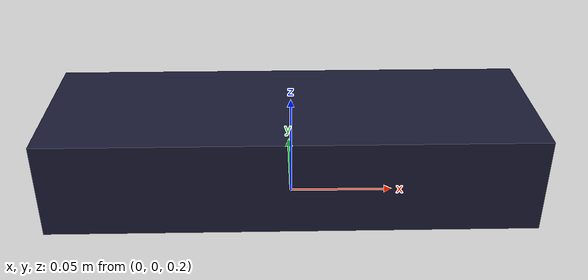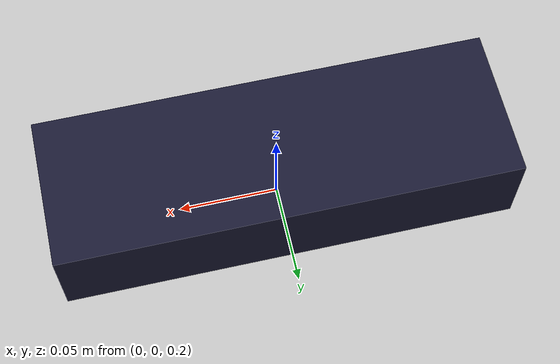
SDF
<?xml version='1.0'?>
  <sdf version='1.4'>
    <model name="box">
      <pose>0 0 0.225 0 0 0</pose>
      <link name='chassis'>
         <inertial>
          <mass>0.501</mass>
           <inertia>
              <ixx>0.05265</ixx>
              <ixy>0.0</ixy>
              <ixz>0.0</ixz>
              <iyy>0.05625</iyy>
              <iyz>0.0</iyz>
              <izz>0.00765</izz>
           </inertia>
         </inertial>

         <collision name='collision'>
           <geometry>
             <box>
               <size>0.225 0.075 0.045</size>
             </box>
           </geometry>
         </collision>

         <visual name='visual'>
           <geometry>
             <box>
               <size>0.225 0.075 0.045</size>
             </box>
           </geometry>
           <material>
             <ambient>0.1 0.1 0.1 1</ambient>
             <diffuse>0.1 0.1 0.2 1</diffuse>
             <specular>0 0 0 0</specular>
             <emissive>1 0 0 1</emissive>
           </material>
         </visual>
      </link>

  </model>
</sdf>
